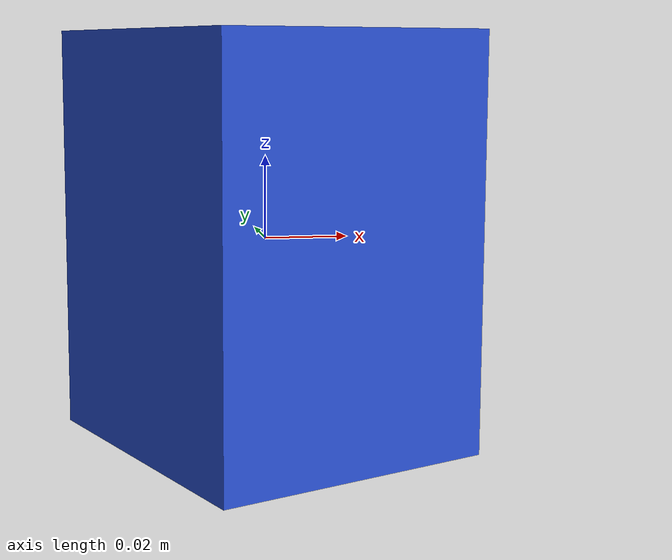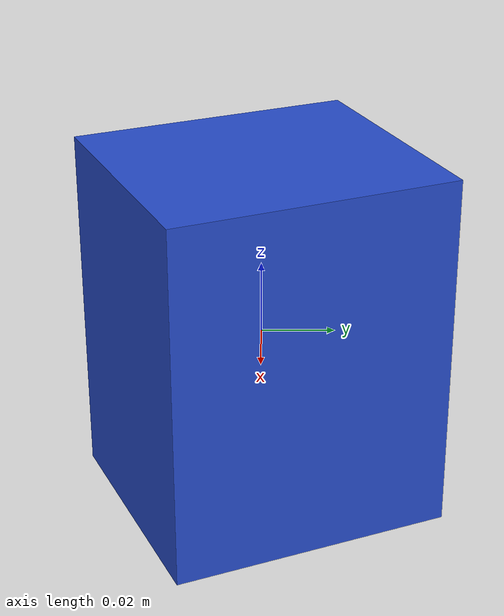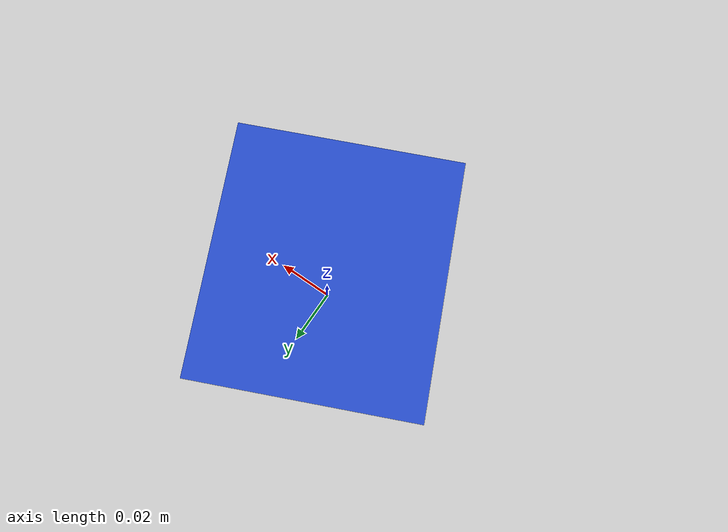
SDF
<sdf version="1.6"><model name="model_20"><static>true</static><link name="link"><pose>0 0 0 0 0 0.4206565102343365</pose><collision name="collision"><geometry><box><size>0.07035077875613902 0.07883299840471916 0.1</size></box></geometry></collision><visual name="visual"><geometry><box><size>0.07035077875613902 0.07883299840471916 0.1</size></box></geometry><material><script><name>Gazebo/Blue</name><uri>file://media/materials/scripts/gazebo.material</uri></script></material></visual></link></model></sdf>
